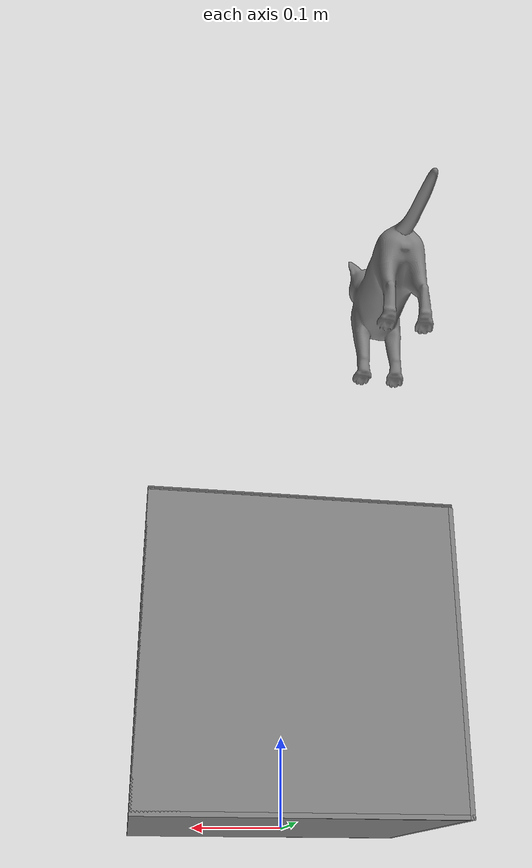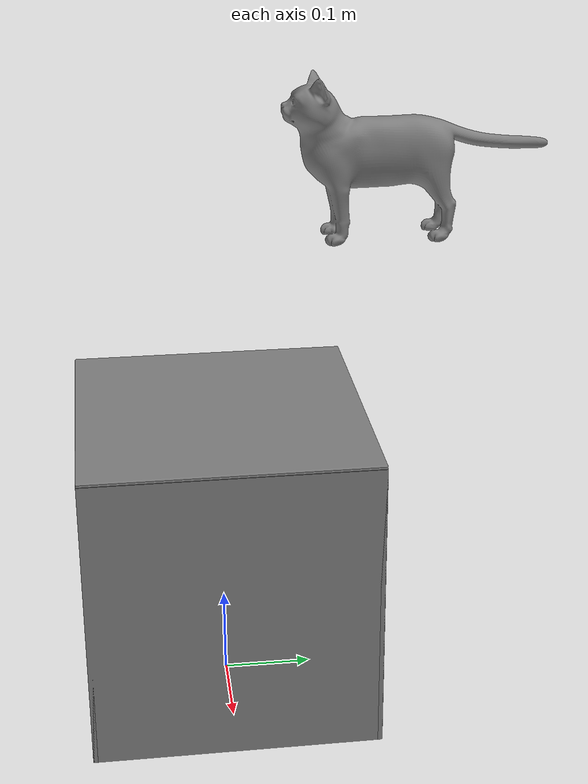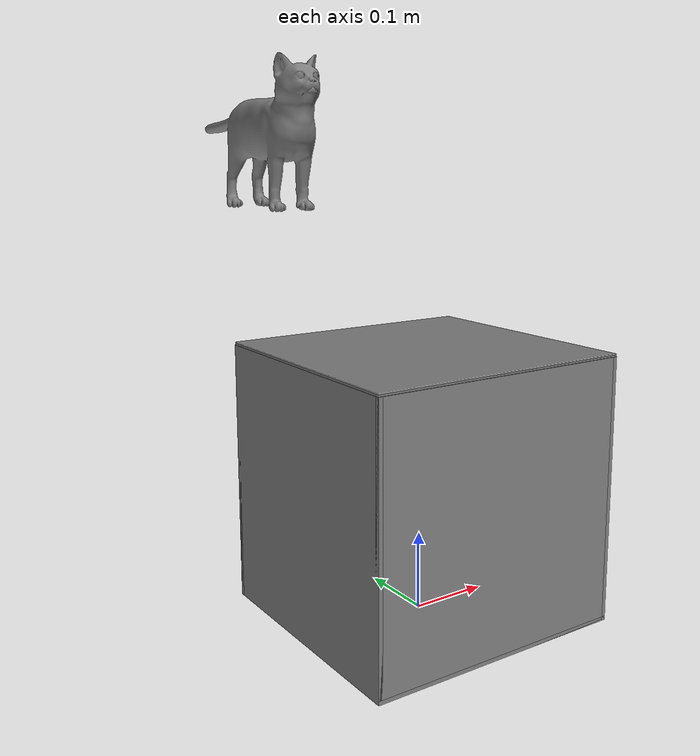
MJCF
<mujoco model="box_scenario">
    <compiler angle="radian" meshdir="/media/giangnguyen/Storage/Multiverse/multiverse_ws/src/multiverse_core/multiverse_parser/examples/urdf_to_mjcf/mjcf/box_scenario/stl/" autolimits="true" fusestatic="false" balanceinertia="true" discardvisual="true" boundmass="0.000001" boundinertia="0.000001"/>
    <statistic meansize="0.270405" extent="1.03653" center="0 0.00352188 0.2873"/>
    <asset>
        <mesh name="geom_6" file="geom_6.stl" scale="1 1 1"/>
        <mesh name="geom_7" file="geom_7.stl" scale="1 1 1"/>
        <mesh name="geom_8" file="geom_8.stl"/>
    </asset>
    <worldbody>
        <body name="box_scenario">
            <body name="box" pos="0 0 0.17">
                <inertial pos="0 0 -0.0346779" mass="1e-06" diaginertia="0.0896471 0.0802124 0.0752812"/>
                <geom size="0.17 0.16 0.0025" pos="0 0 -0.1675" type="box"/>
                <geom size="0.002578 0.16 0.1675" pos="0.167578 0 -0.0025" type="box"/>
                <geom size="0.002578 0.16 0.1675" pos="-0.167578 0 -0.0025" type="box"/>
                <geom size="0.170156 0.0025 0.1675" pos="0 0.1575 -0.0025" type="box"/>
                <geom size="0.170156 0.0025 0.1675" pos="0 -0.1575 -0.0025" type="box"/>
                <body name="box_flap_1" pos="0.17 0 0.166" quat="0.707107 -0.707107 0 0">
                    <inertial pos="-0.17 -1.52408e-09 -3.30975e-09" mass="0.216527" diaginertia="0.00391963 0.00207876 0.00184101"/>
                    <joint name="box_flap_1_joint" pos="0 0 0" axis="0 0 1" range="-1.57 4.7"/>
                    <geom pos="-0.17 3.30975e-09 -1.52408e-09" quat="0.5 -0.5 0.5 -0.5" type="mesh" mesh="geom_6"/>
                </body>
                <body name="box_flap_2" pos="-0.17 0 0.168" quat="0.707107 0.707107 0 0">
                    <inertial pos="0.17 -3.85359e-10 -1.73946e-12" mass="0.216527" diaginertia="0.00391963 0.00207876 0.00184101"/>
                    <joint name="box_flap_2_joint" pos="0 0 0" axis="0 0 1" range="-1.57 4.7"/>
                    <geom pos="0.17 -1.73948e-12 3.85359e-10" quat="0.5 0.5 0.5 0.5" type="mesh" mesh="geom_7"/>
                </body>
            </body>
            <body name="cat" pos="-0.09594 0.193951 0.5">
                <inertial pos="1.15898e-07 -0.00304644 0.0931473" mass="1.145" diaginertia="0.0050198 0.00389226 0.00158587"/>
                <geom pos="1.15898e-07 -0.00304644 0.0931473" quat="0.820696 0.571365 -1.48771e-06 -1.03574e-06" type="mesh" mesh="geom_8"/>
            </body>
        </body>
    </worldbody>
    <equality/>
    <contact>
        <exclude body1="box_scenario" body2="box"/>
        <exclude body1="box" body2="box_flap_1"/>
        <exclude body1="box" body2="box_flap_2"/>
        <exclude body1="box_scenario" body2="cat"/>
    </contact>
</mujoco>
